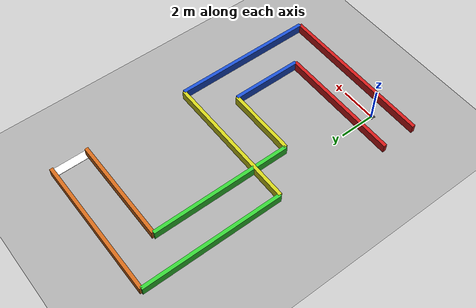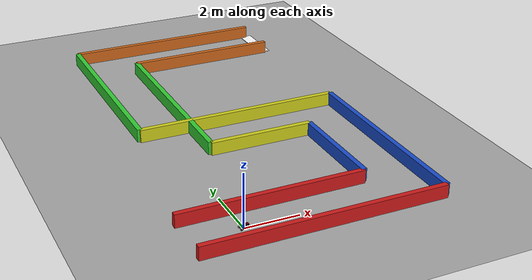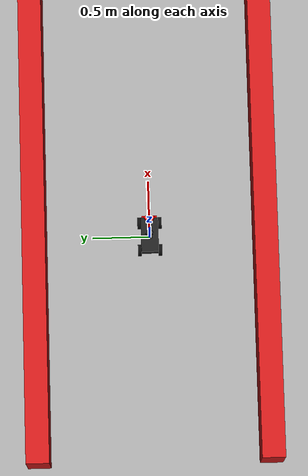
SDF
<?xml version="1.0" ?>
<sdf version="1.9">
  <world name="robocar_empty">
    <gravity>0 0 -9.81</gravity>

    <plugin filename="gz-sim-physics-system" name="gz::sim::systems::Physics"/>
    <plugin filename="gz-sim-scene-broadcaster-system" name="gz::sim::systems::SceneBroadcaster"/>
    <plugin filename="gz-sim-user-commands-system" name="gz::sim::systems::UserCommands"/>
    <plugin filename="gz-sim-sensors-system" name="gz::sim::systems::Sensors">
      <render_engine>ogre2</render_engine>
    </plugin>

    <light type="directional" name="sun">
      <cast_shadows>true</cast_shadows>
      <pose>0 0 10 0 0 0</pose>
      <diffuse>0.8 0.8 0.8 1</diffuse>
      <specular>0.2 0.2 0.2 1</specular>
      <attenuation>
        <range>1000</range>
        <constant>0.9</constant>
        <linear>0.01</linear>
        <quadratic>0.001</quadratic>
      </attenuation>
      <direction>-0.5 0.1 -0.9</direction>
    </light>

    <model name="ground_plane">
      <static>true</static>
      <link name="link">
        <collision name="collision">
          <geometry>
            <plane>
              <normal>0 0 1</normal>
              <size>120 120</size>
            </plane>
          </geometry>
        </collision>
        <visual name="visual">
          <geometry>
            <plane>
              <normal>0 0 1</normal>
              <size>120 120</size>
            </plane>
          </geometry>
          <material>
            <ambient>0.25 0.25 0.25 1</ambient>
            <diffuse>0.65 0.65 0.65 1</diffuse>
          </material>
        </visual>
      </link>
    </model>

    <!-- UN VRAI CIRCUIT DE JEU AVEC DEBUT ET FIN -->
    <model name="circuit_wall_1">
      <static>true</static><pose>2.5 -1.0 0.25 0 0 0</pose>
      <link name="link"><collision name="c"><geometry><box><size>9 0.2 0.5</size></box></geometry></collision><visual name="v"><geometry><box><size>9 0.2 0.5</size></box></geometry><material><ambient>0.8 0.1 0.1 1</ambient><diffuse>0.8 0.1 0.1 1</diffuse></material></visual></link>
    </model>
    <model name="circuit_wall_2">
      <static>true</static><pose>1.5 1.0 0.25 0 0 0</pose>
      <link name="link"><collision name="c"><geometry><box><size>7 0.2 0.5</size></box></geometry></collision><visual name="v"><geometry><box><size>7 0.2 0.5</size></box></geometry><material><ambient>0.8 0.1 0.1 1</ambient><diffuse>0.8 0.1 0.1 1</diffuse></material></visual></link>
    </model>
    <model name="circuit_wall_3">
      <static>true</static><pose>7.0 3.0 0.25 0 0 1.5707</pose>
      <link name="link"><collision name="c"><geometry><box><size>8 0.2 0.5</size></box></geometry></collision><visual name="v"><geometry><box><size>8 0.2 0.5</size></box></geometry><material><ambient>0.1 0.3 0.8 1</ambient><diffuse>0.1 0.3 0.8 1</diffuse></material></visual></link>
    </model>
    <model name="circuit_wall_4">
      <static>true</static><pose>5.0 3.0 0.25 0 0 1.5707</pose>
      <link name="link"><collision name="c"><geometry><box><size>4 0.2 0.5</size></box></geometry></collision><visual name="v"><geometry><box><size>4 0.2 0.5</size></box></geometry><material><ambient>0.1 0.3 0.8 1</ambient><diffuse>0.1 0.3 0.8 1</diffuse></material></visual></link>
    </model>
    <model name="circuit_wall_5">
      <static>true</static><pose>3.0 7.0 0.25 0 0 0</pose>
      <link name="link"><collision name="c"><geometry><box><size>8 0.2 0.5</size></box></geometry></collision><visual name="v"><geometry><box><size>8 0.2 0.5</size></box></geometry><material><ambient>0.8 0.8 0.1 1</ambient><diffuse>0.8 0.8 0.1 1</diffuse></material></visual></link>
    </model>
    <model name="circuit_wall_6">
      <static>true</static><pose>3.0 5.0 0.25 0 0 0</pose>
      <link name="link"><collision name="c"><geometry><box><size>4 0.2 0.5</size></box></geometry></collision><visual name="v"><geometry><box><size>4 0.2 0.5</size></box></geometry><material><ambient>0.8 0.8 0.1 1</ambient><diffuse>0.8 0.8 0.1 1</diffuse></material></visual></link>
    </model>
    <model name="circuit_wall_7">
      <static>true</static><pose>-1.0 11.0 0.25 0 0 1.5707</pose>
      <link name="link"><collision name="c"><geometry><box><size>8 0.2 0.5</size></box></geometry></collision><visual name="v"><geometry><box><size>8 0.2 0.5</size></box></geometry><material><ambient>0.2 0.8 0.2 1</ambient><diffuse>0.2 0.8 0.2 1</diffuse></material></visual></link>
    </model>
    <model name="circuit_wall_8">
      <static>true</static><pose>1.0 9.0 0.25 0 0 1.5707</pose>
      <link name="link"><collision name="c"><geometry><box><size>8 0.2 0.5</size></box></geometry></collision><visual name="v"><geometry><box><size>8 0.2 0.5</size></box></geometry><material><ambient>0.2 0.8 0.2 1</ambient><diffuse>0.2 0.8 0.2 1</diffuse></material></visual></link>
    </model>
    <model name="circuit_wall_9">
      <static>true</static><pose>3.0 15.0 0.25 0 0 0</pose>
      <link name="link"><collision name="c"><geometry><box><size>8 0.2 0.5</size></box></geometry></collision><visual name="v"><geometry><box><size>8 0.2 0.5</size></box></geometry><material><ambient>0.8 0.4 0.1 1</ambient><diffuse>0.8 0.4 0.1 1</diffuse></material></visual></link>
    </model>
    <model name="circuit_wall_10">
      <static>true</static><pose>4.0 13.0 0.25 0 0 0</pose>
      <link name="link"><collision name="c"><geometry><box><size>6 0.2 0.5</size></box></geometry></collision><visual name="v"><geometry><box><size>6 0.2 0.5</size></box></geometry><material><ambient>0.8 0.4 0.1 1</ambient><diffuse>0.8 0.4 0.1 1</diffuse></material></visual></link>
    </model>

    <!-- LIGNE D'ARRIVEE -->
    <model name="finish_line">
      <static>true</static><pose>7.0 14.0 0.01 0 0 0</pose>
      <link name="link"><visual name="v"><geometry><box><size>0.5 2.0 0.02</size></box></geometry><material><ambient>1 1 1 1</ambient><diffuse>1 1 1 1</diffuse></material></visual></link>
    </model>

    <model name="robocar">
      <pose>0 0 0 0 0 0</pose>

      <plugin filename="gz-sim-diff-drive-system" name="gz::sim::systems::DiffDrive">
        <left_joint>left_wheel_joint</left_joint>
        <right_joint>right_wheel_joint</right_joint>
        <wheel_separation>0.18</wheel_separation>
        <wheel_radius>0.03</wheel_radius>
        <topic>/cmd_vel</topic>
        <odom_topic>/odom</odom_topic>
        <tf_topic>/tf</tf_topic>
        <odom_publish_frequency>50</odom_publish_frequency>
        <max_linear_acceleration>1000.0</max_linear_acceleration>
        <min_linear_acceleration>-1000.0</min_linear_acceleration>
        <max_angular_acceleration>8.0</max_angular_acceleration>
        <min_angular_acceleration>-8.0</min_angular_acceleration>
        <max_linear_velocity>1000.0</max_linear_velocity>
        <min_linear_velocity>-1000.0</min_linear_velocity>
        <max_angular_velocity>5.0</max_angular_velocity>
        <min_angular_velocity>-5.0</min_angular_velocity>
      </plugin>

      <plugin filename="gz-sim-joint-position-controller-system" name="gz::sim::systems::JointPositionController">
        <joint_name>front_left_steering_joint</joint_name>
        <topic>/robocar/front_left_steering_cmd</topic>
        <p_gain>30.0</p_gain>
        <i_gain>0.0</i_gain>
        <d_gain>1.0</d_gain>
        <cmd_max>80.0</cmd_max>
        <cmd_min>-80.0</cmd_min>
      </plugin>

      <plugin filename="gz-sim-joint-position-controller-system" name="gz::sim::systems::JointPositionController">
        <joint_name>front_right_steering_joint</joint_name>
        <topic>/robocar/front_right_steering_cmd</topic>
        <p_gain>30.0</p_gain>
        <i_gain>0.0</i_gain>
        <d_gain>1.0</d_gain>
        <cmd_max>80.0</cmd_max>
        <cmd_min>-80.0</cmd_min>
      </plugin>

      <link name="base_link">
        <pose>0 0 0.1 0 0 0</pose>
        <inertial>
          <mass>2.0</mass>
          <inertia>
            <ixx>0.05</ixx>
            <iyy>0.05</iyy>
            <izz>0.05</izz>
            <ixy>0.0</ixy>
            <ixz>0.0</ixz>
            <iyz>0.0</iyz>
          </inertia>
        </inertial>

        <collision name="collision">
          <geometry>
            <box>
              <size>0.30 0.15 0.10</size>
            </box>
          </geometry>
        </collision>

        <visual name="visual">
          <geometry>
            <box>
              <size>0.30 0.15 0.10</size>
            </box>
          </geometry>
          <material>
            <ambient>0.1 0.1 0.1 1</ambient>
            <diffuse>0.12 0.12 0.12 1</diffuse>
          </material>
        </visual>

        <visual name="front_marker_stem">
          <pose>0.055 0 0.058 0 0 0</pose>
          <geometry>
            <box>
              <size>0.15 0.025 0.018</size>
            </box>
          </geometry>
          <material>
            <ambient>1 0 0 1</ambient>
            <diffuse>1 0 0 1</diffuse>
            <emissive>0.35 0 0 1</emissive>
          </material>
        </visual>

        <visual name="front_marker_left_head">
          <pose>0.13 0.022 0.058 0 0 0.55</pose>
          <geometry>
            <box>
              <size>0.07 0.022 0.018</size>
            </box>
          </geometry>
          <material>
            <ambient>1 0 0 1</ambient>
            <diffuse>1 0 0 1</diffuse>
            <emissive>0.35 0 0 1</emissive>
          </material>
        </visual>

        <visual name="front_marker_right_head">
          <pose>0.13 -0.022 0.058 0 0 -0.55</pose>
          <geometry>
            <box>
              <size>0.07 0.022 0.018</size>
            </box>
          </geometry>
          <material>
            <ambient>1 0 0 1</ambient>
            <diffuse>1 0 0 1</diffuse>
            <emissive>0.35 0 0 1</emissive>
          </material>
        </visual>

        <visual name="front_marker_nose">
          <pose>0.158 0 0.02 0 0 0</pose>
          <geometry>
            <box>
              <size>0.018 0.13 0.035</size>
            </box>
          </geometry>
          <material>
            <ambient>1 0 0 1</ambient>
            <diffuse>1 0 0 1</diffuse>
            <emissive>0.35 0 0 1</emissive>
          </material>
        </visual>
      </link>

      <link name="front_left_steering_link">
        <pose>0.12 0.075 0.05 0 0 0</pose>
        <inertial>
          <mass>0.08</mass>
          <inertia>
            <ixx>0.0001</ixx>
            <iyy>0.0001</iyy>
            <izz>0.0001</izz>
            <ixy>0.0</ixy>
            <ixz>0.0</ixz>
            <iyz>0.0</iyz>
          </inertia>
        </inertial>
        <visual name="visual">
          <geometry>
            <cylinder>
              <radius>0.012</radius>
              <length>0.03</length>
            </cylinder>
          </geometry>
          <material>
            <ambient>0.7 0.7 0.7 1</ambient>
            <diffuse>0.7 0.7 0.7 1</diffuse>
          </material>
        </visual>
      </link>

      <link name="front_right_steering_link">
        <pose>0.12 -0.075 0.05 0 0 0</pose>
        <inertial>
          <mass>0.08</mass>
          <inertia>
            <ixx>0.0001</ixx>
            <iyy>0.0001</iyy>
            <izz>0.0001</izz>
            <ixy>0.0</ixy>
            <ixz>0.0</ixz>
            <iyz>0.0</iyz>
          </inertia>
        </inertial>
        <visual name="visual">
          <geometry>
            <cylinder>
              <radius>0.012</radius>
              <length>0.03</length>
            </cylinder>
          </geometry>
          <material>
            <ambient>0.7 0.7 0.7 1</ambient>
            <diffuse>0.7 0.7 0.7 1</diffuse>
          </material>
        </visual>
      </link>

      <link name="front_left_wheel_link">
        <pose>0.12 0.09 0.05 1.57079632679 0 0</pose>
        <inertial>
          <mass>0.35</mass>
          <inertia>
            <ixx>0.001</ixx>
            <iyy>0.001</iyy>
            <izz>0.001</izz>
            <ixy>0.0</ixy>
            <ixz>0.0</ixz>
            <iyz>0.0</iyz>
          </inertia>
        </inertial>
        <collision name="collision">
          <geometry>
            <sphere>
              <radius>0.05</radius>
            </sphere>
          </geometry>
          <surface>
            <friction>
              <ode>
                <mu>1.0</mu>
                <mu2>1.0</mu2>
                <slip1>0.035</slip1>
                <slip2>0.0</slip2>
                <fdir1>0 0 1</fdir1>
              </ode>
            </friction>
          </surface>
        </collision>
        <visual name="visual">
          <geometry>
            <cylinder>
              <radius>0.05</radius>
              <length>0.03</length>
            </cylinder>
          </geometry>
          <material>
            <ambient>0.04 0.04 0.04 1</ambient>
            <diffuse>0.05 0.05 0.05 1</diffuse>
          </material>
        </visual>
      </link>

      <link name="front_right_wheel_link">
        <pose>0.12 -0.09 0.05 1.57079632679 0 0</pose>
        <inertial>
          <mass>0.35</mass>
          <inertia>
            <ixx>0.001</ixx>
            <iyy>0.001</iyy>
            <izz>0.001</izz>
            <ixy>0.0</ixy>
            <ixz>0.0</ixz>
            <iyz>0.0</iyz>
          </inertia>
        </inertial>
        <collision name="collision">
          <geometry>
            <sphere>
              <radius>0.05</radius>
            </sphere>
          </geometry>
          <surface>
            <friction>
              <ode>
                <mu>1.0</mu>
                <mu2>1.0</mu2>
                <slip1>0.035</slip1>
                <slip2>0.0</slip2>
                <fdir1>0 0 1</fdir1>
              </ode>
            </friction>
          </surface>
        </collision>
        <visual name="visual">
          <geometry>
            <cylinder>
              <radius>0.05</radius>
              <length>0.03</length>
            </cylinder>
          </geometry>
          <material>
            <ambient>0.04 0.04 0.04 1</ambient>
            <diffuse>0.05 0.05 0.05 1</diffuse>
          </material>
        </visual>
      </link>

      <link name="left_wheel_link">
        <pose>-0.12 0.09 0.05 1.57079632679 0 0</pose>
        <inertial>
          <mass>0.35</mass>
          <inertia>
            <ixx>0.001</ixx>
            <iyy>0.001</iyy>
            <izz>0.001</izz>
            <ixy>0.0</ixy>
            <ixz>0.0</ixz>
            <iyz>0.0</iyz>
          </inertia>
        </inertial>
        <collision name="collision">
          <geometry>
            <sphere>
              <radius>0.05</radius>
            </sphere>
          </geometry>
          <surface>
            <friction>
              <ode>
                <mu>1.0</mu>
                <mu2>1.0</mu2>
                <slip1>0.035</slip1>
                <slip2>0.0</slip2>
                <fdir1>0 0 1</fdir1>
              </ode>
            </friction>
          </surface>
        </collision>
        <visual name="visual">
          <geometry>
            <cylinder>
              <radius>0.05</radius>
              <length>0.03</length>
            </cylinder>
          </geometry>
          <material>
            <ambient>0.04 0.04 0.04 1</ambient>
            <diffuse>0.05 0.05 0.05 1</diffuse>
          </material>
        </visual>
      </link>

      <link name="right_wheel_link">
        <pose>-0.12 -0.09 0.05 1.57079632679 0 0</pose>
        <inertial>
          <mass>0.35</mass>
          <inertia>
            <ixx>0.001</ixx>
            <iyy>0.001</iyy>
            <izz>0.001</izz>
            <ixy>0.0</ixy>
            <ixz>0.0</ixz>
            <iyz>0.0</iyz>
          </inertia>
        </inertial>
        <collision name="collision">
          <geometry>
            <sphere>
              <radius>0.05</radius>
            </sphere>
          </geometry>
          <surface>
            <friction>
              <ode>
                <mu>1.0</mu>
                <mu2>1.0</mu2>
                <slip1>0.035</slip1>
                <slip2>0.0</slip2>
                <fdir1>0 0 1</fdir1>
              </ode>
            </friction>
          </surface>
        </collision>
        <visual name="visual">
          <geometry>
            <cylinder>
              <radius>0.05</radius>
              <length>0.03</length>
            </cylinder>
          </geometry>
          <material>
            <ambient>0.04 0.04 0.04 1</ambient>
            <diffuse>0.05 0.05 0.05 1</diffuse>
          </material>
        </visual>
      </link>

      <joint name="front_left_steering_joint" type="revolute">
        <parent>base_link</parent>
        <child>front_left_steering_link</child>
        <axis>
          <xyz>0 0 1</xyz>
          <dynamics>
            <damping>0.1</damping>
          </dynamics>
          <limit>
            <lower>-0.6108652382</lower>
            <upper>0.6108652382</upper>
            <velocity>8.0</velocity>
            <effort>100</effort>
          </limit>
        </axis>
      </joint>

      <joint name="front_right_steering_joint" type="revolute">
        <parent>base_link</parent>
        <child>front_right_steering_link</child>
        <axis>
          <xyz>0 0 1</xyz>
          <dynamics>
            <damping>0.1</damping>
          </dynamics>
          <limit>
            <lower>-0.6108652382</lower>
            <upper>0.6108652382</upper>
            <velocity>8.0</velocity>
            <effort>100</effort>
          </limit>
        </axis>
      </joint>

      <joint name="front_left_wheel_joint" type="revolute">
        <parent>front_left_steering_link</parent>
        <child>front_left_wheel_link</child>
        <axis>
          <xyz>0 0 1</xyz>
          <dynamics>
            <damping>0.0</damping>
          </dynamics>
          <limit>
            <lower>-1e16</lower>
            <upper>1e16</upper>
            <velocity>200.0</velocity>
            <effort>100.0</effort>
          </limit>
        </axis>
      </joint>

      <joint name="front_right_wheel_joint" type="revolute">
        <parent>front_right_steering_link</parent>
        <child>front_right_wheel_link</child>
        <axis>
          <xyz>0 0 1</xyz>
          <dynamics>
            <damping>0.0</damping>
          </dynamics>
          <limit>
            <lower>-1e16</lower>
            <upper>1e16</upper>
            <velocity>200.0</velocity>
            <effort>100.0</effort>
          </limit>
        </axis>
      </joint>

      <joint name="left_wheel_joint" type="revolute">
        <parent>base_link</parent>
        <child>left_wheel_link</child>
        <axis>
          <xyz>0 0 -1</xyz>
          <dynamics>
            <damping>0.0</damping>
          </dynamics>
          <limit>
            <lower>-1e16</lower>
            <upper>1e16</upper>
            <velocity>200.0</velocity>
            <effort>100.0</effort>
          </limit>
        </axis>
      </joint>

      <joint name="right_wheel_joint" type="revolute">
        <parent>base_link</parent>
        <child>right_wheel_link</child>
        <axis>
          <xyz>0 0 -1</xyz>
          <dynamics>
            <damping>0.0</damping>
          </dynamics>
          <limit>
            <lower>-1e16</lower>
            <upper>1e16</upper>
            <velocity>200.0</velocity>
            <effort>100.0</effort>
          </limit>
        </axis>
      </joint>

      <link name="lidar_link">
        <pose>0 0 0.13 0 0 0</pose>
        <inertial>
          <mass>0.2</mass>
          <inertia>
            <ixx>0.001</ixx>
            <iyy>0.001</iyy>
            <izz>0.001</izz>
            <ixy>0.0</ixy>
            <ixz>0.0</ixz>
            <iyz>0.0</iyz>
          </inertia>
        </inertial>

        <collision name="collision">
          <geometry>
            <cylinder>
              <radius>0.04</radius>
              <length>0.04</length>
            </cylinder>
          </geometry>
        </collision>

        <visual name="visual">
          <geometry>
            <cylinder>
              <radius>0.04</radius>
              <length>0.04</length>
            </cylinder>
          </geometry>
          <material>
            <ambient>0.15 0.15 0.15 1</ambient>
            <diffuse>0.2 0.2 0.2 1</diffuse>
          </material>
        </visual>

        <sensor name="top_lidar" type="gpu_lidar">
          <pose>0 0 0.04 0 0 0</pose>
          <topic>/scan</topic>
          <always_on>true</always_on>
          <update_rate>20</update_rate>
          <visualize>true</visualize>
          <ray>
            <scan>
              <horizontal>
                <samples>720</samples>
                <resolution>1</resolution>
                <min_angle>0.0</min_angle>
                <max_angle>6.26573201466</max_angle>
              </horizontal>
            </scan>
            <range>
              <min>0.05</min>
              <max>12.0</max>
              <resolution>0.02</resolution>
            </range>
          </ray>
        </sensor>
      </link>

      <joint name="lidar_mount_joint" type="fixed">
        <parent>base_link</parent>
        <child>lidar_link</child>
      </joint>
    </model>
  </world>
</sdf>
